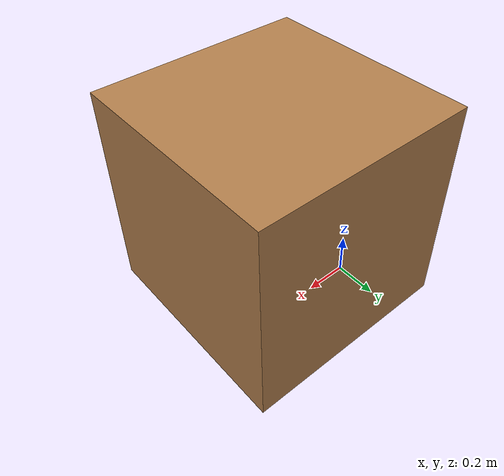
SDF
<?xml version='1.0'?>
<sdf version='1.7'>

  <model name='unit_box'>
    <pose>0.280571 -0.160515 0.5 0 -0 0</pose>
    <gravity>0</gravity>
    <link name='link'>
      <inertial>
        <mass>1000</mass>
        <inertia>
          <ixx>16.6667</ixx>
          <ixy>0</ixy>
          <ixz>0</ixz>
          <iyy>16.6667</iyy>
          <iyz>0</iyz>
          <izz>16.6667</izz>
        </inertia>
        <pose>0 0 0 0 -0 0</pose>
      </inertial>
      <collision name='collision'>
        <geometry>
          <box>
            <size>1 1 1</size>
          </box>
        </geometry>
        <max_contacts>3</max_contacts>
      </collision>
      <visual name='visual'>
        <geometry>
          <box>
            <size>1 1 1</size>
          </box>
        </geometry>
        <material>
          <script>
            <name>Gazebo/Wood</name>
            <uri>file://media/materials/scripts/gazebo.material</uri>
          </script>
        </material>
      </visual>
      <self_collide>0</self_collide>
      <enable_wind>0</enable_wind>
      <kinematic>0</kinematic>
    </link>
  </model>
</sdf>
